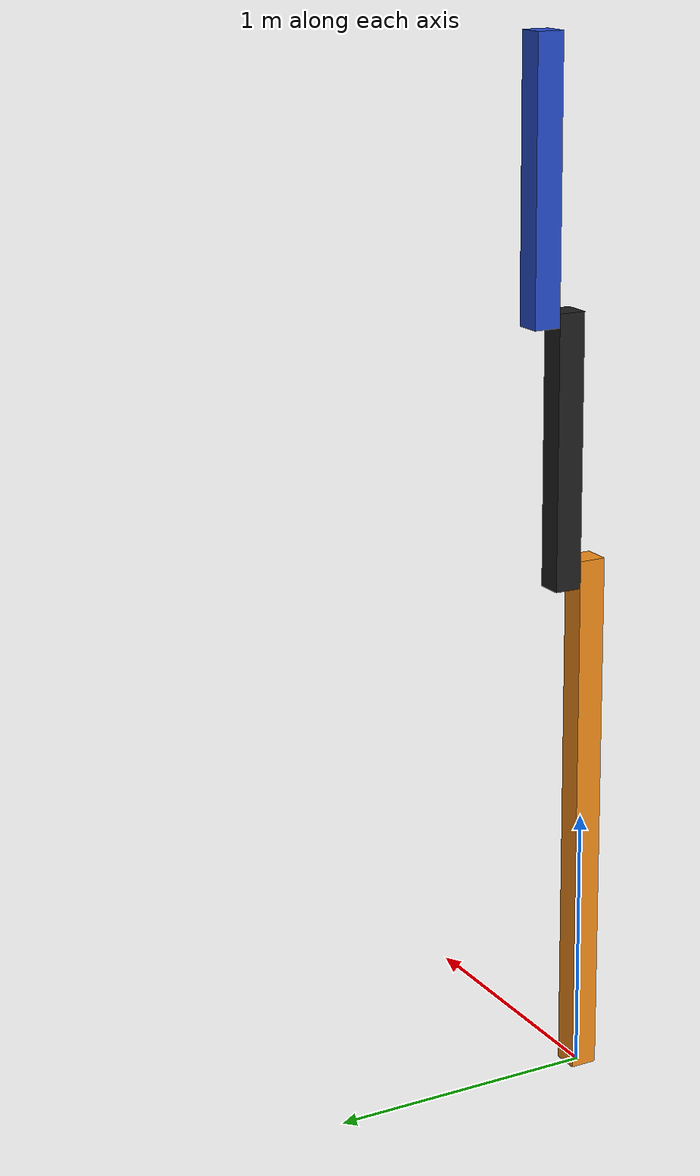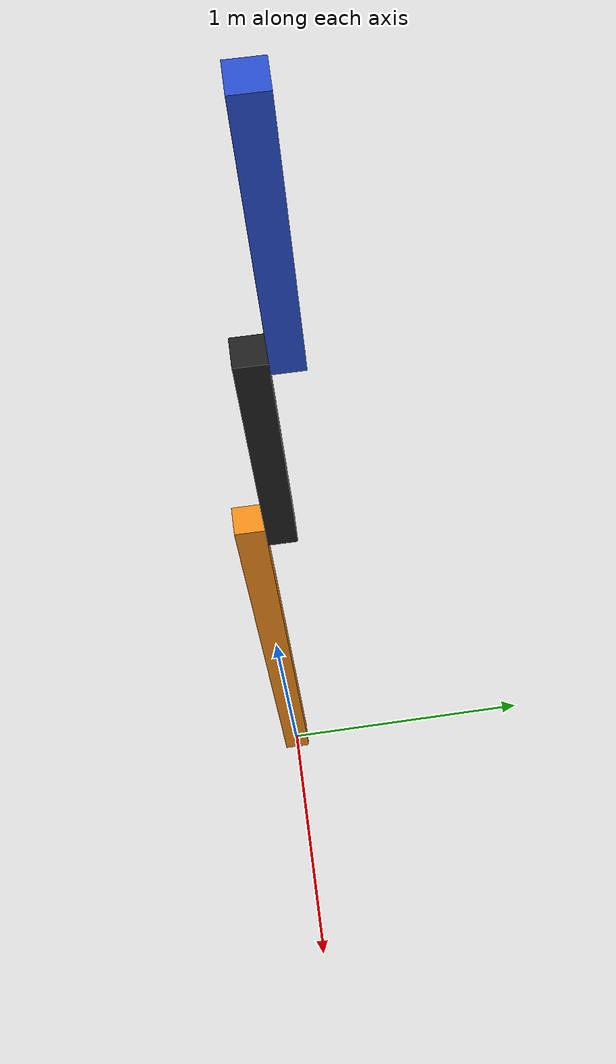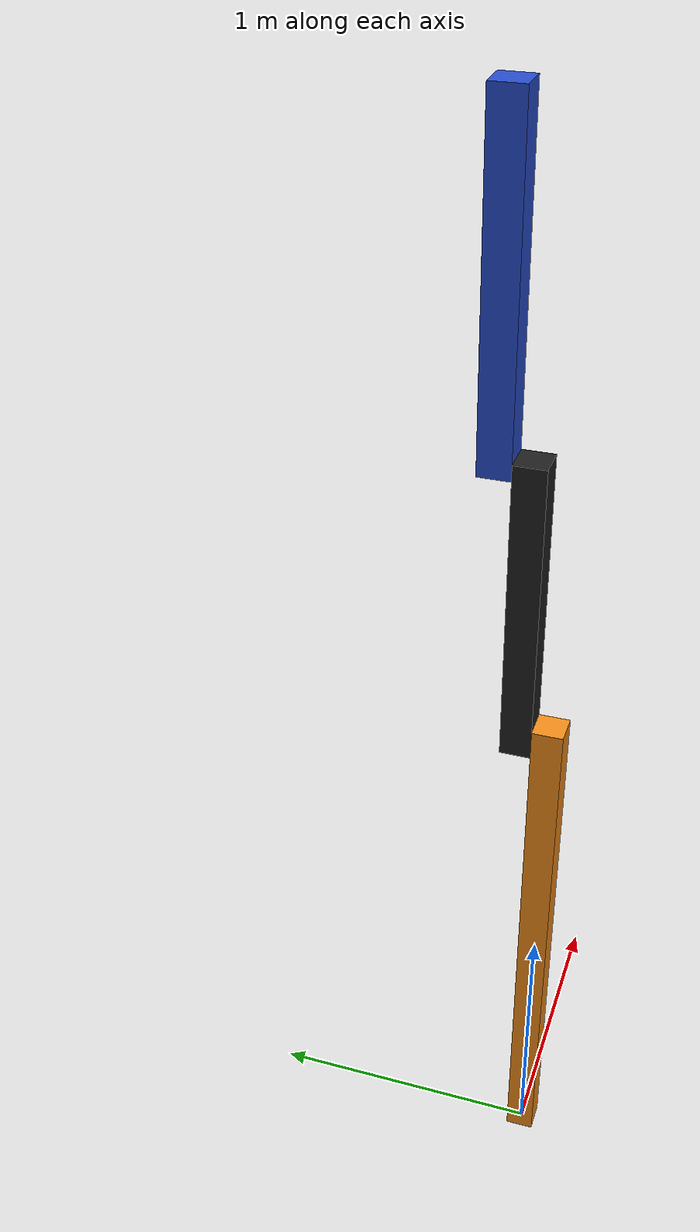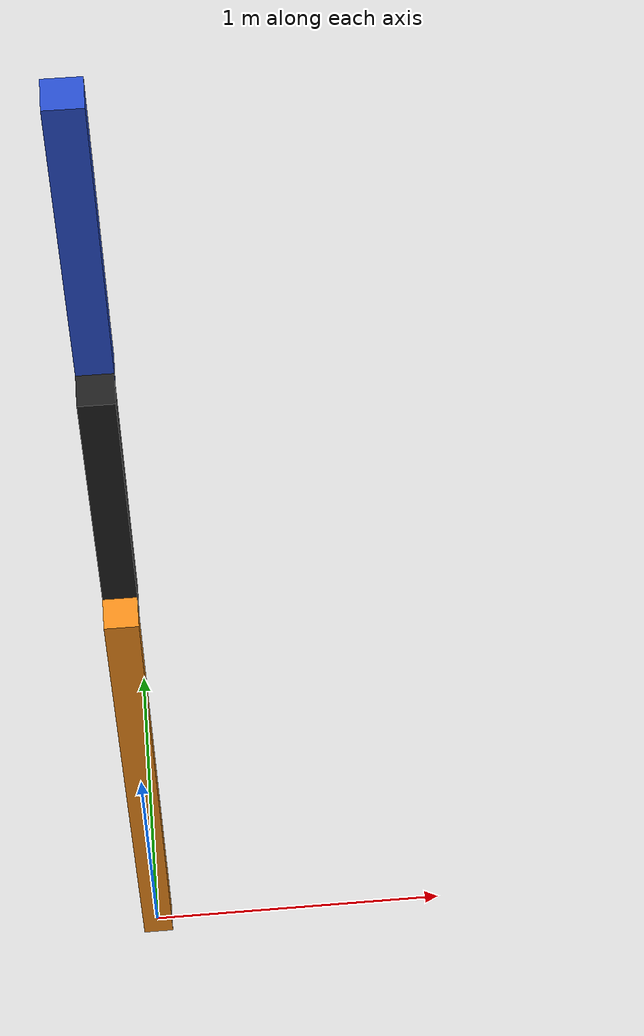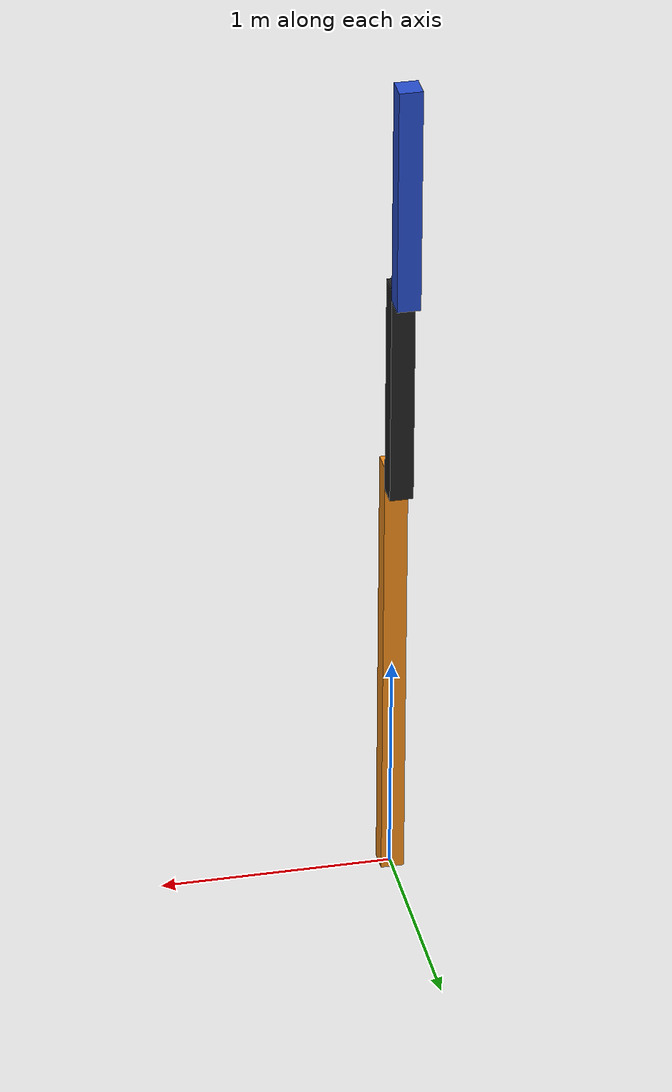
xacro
<?xml version="1.0"?>
<!-- Revolute-Revolute Manipulator -->
<robot name="trobo" xmlns:xacro="http://www.ros.org/wiki/xacro">

  <!-- Constants for robot dimensions -->
  <xacro:property name="PI" value="3.1415926535897931"/>
  <xacro:property name="width" value="0.1" /> <!-- Square dimensions (widthxwidth) of beams -->
  <xacro:property name="height1" value="2" /> <!-- Link 1 -->
  <xacro:property name="height2" value="1" /> <!-- Link 2 -->
  <xacro:property name="height3" value="1" /> <!-- Link 3 -->
  <xacro:property name="camera_link" value="0.05" /> <!-- Size of square 'camera' box -->
  <xacro:property name="axel_offset" value="0.05" /> <!-- Space btw top of beam and the each joint -->

  <!-- Used for fixing robot to Gazebo 'base_link' -->
  <link name="world"/>

  <joint name="fixed" type="fixed">
    <parent link="world"/>
    <child link="link1"/>
  </joint>

  <!-- Base Link -->
  <link name="link1">
    <collision>
      <origin xyz="0 0 ${height1/2}" rpy="0 0 0"/>
      <geometry>
	<box size="${width} ${width} ${height1}"/>
      </geometry>
    </collision>

    <visual>
      <origin xyz="0 0 ${height1/2}" rpy="0 0 0"/>
      <geometry>
	<box size="${width} ${width} ${height1}"/>
      </geometry>
      <material name="orange"/>
    </visual>

    <inertial>
      <origin xyz="0 0 ${height1/2}" rpy="0 0 0"/>
      <mass value="1"/>
      <inertia
	  ixx="1.0" ixy="0.0" ixz="0.0"
	  iyy="1.0" iyz="0.0"
	  izz="1.0"/>
    </inertial>
  </link>

  <joint name="joint1" type="continuous">
    <parent link="link1"/>
    <child link="link2"/>
    <origin xyz="0 ${width} ${height1 - axel_offset}" rpy="0 0 0"/>
    <axis xyz="0 1 0"/>
    <dynamics damping="0.7"/>
  </joint>

  <!-- Middle Link -->
  <link name="link2">
    <collision>
      <origin xyz="0 0 ${height2/2 - axel_offset}" rpy="0 0 0"/>
      <geometry>
	<box size="${width} ${width} ${height2}"/>
      </geometry>
    </collision>

    <visual>
      <origin xyz="0 0 ${height2/2 - axel_offset}" rpy="0 0 0"/>
      <geometry>
	<box size="${width} ${width} ${height2}"/>
      </geometry>
      <material name="black"/>
    </visual>

    <inertial>
      <origin xyz="0 0 ${height3/2 - axel_offset}" rpy="0 0 0"/>
      <mass value="1"/>
      <inertia
	  ixx="1.0" ixy="0.0" ixz="0.0"
	  iyy="1.0" iyz="0.0"
	  izz="1.0"/>
    </inertial>
  </link>

  <transmission name="tran1">
    <type>transmission_interface/SimpleTransmission</type>
    <joint name="joint1">
      <hardwareInterface>PositionJointInterface</hardwareInterface>
    </joint>
    <actuator name="motor1">
      <hardwareInterface>PositionJointInterface</hardwareInterface>
      <mechanicalReduction>1</mechanicalReduction>
    </actuator>
  </transmission>

  <joint name="joint2" type="continuous">
    <parent link="link2"/>
    <child link="link3"/>
    <origin xyz="0 ${width} ${height2 - axel_offset}" rpy="0 0 0"/>
    <axis xyz="0 1 0"/>
    <dynamics damping="0.7"/>
  </joint>

  <!-- Leaf Link -->
  <link name="link3">
    <collision>
      <origin xyz="0 0 ${height3/2 - axel_offset}" rpy="0 0 0"/>
      <geometry>
	<box size="${width} ${width} ${height3}"/>
      </geometry>
    </collision>

    <visual>
      <origin xyz="0 0 ${height3/2 - axel_offset}" rpy="0 0 0"/>
      <geometry>
	<box size="${width} ${width} ${height3}"/>
      </geometry>
      <material name="blue"/>
    </visual>

    <inertial>
      <origin xyz="0 0 ${height3/2 - axel_offset}" rpy="0 0 0"/>
      <mass value="1"/>
      <inertia
	  ixx="1.0" ixy="0.0" ixz="0.0"
	  iyy="1.0" iyz="0.0"
	  izz="1.0"/>
    </inertial>
  </link>
  <transmission name="tran2">
    <type>transmission_interface/SimpleTransmission</type>
    <joint name="joint2">
      <hardwareInterface>PositionJointInterface</hardwareInterface>
    </joint>
    <actuator name="motor2">
      <hardwareInterface>PositionJointInterface</hardwareInterface>
      <mechanicalReduction>1</mechanicalReduction>
    </actuator>
  </transmission>
</robot>
